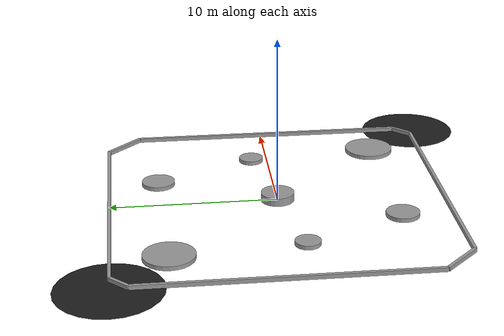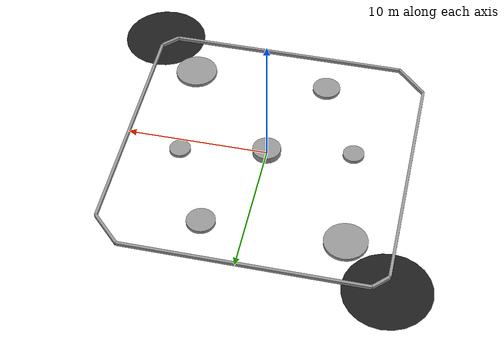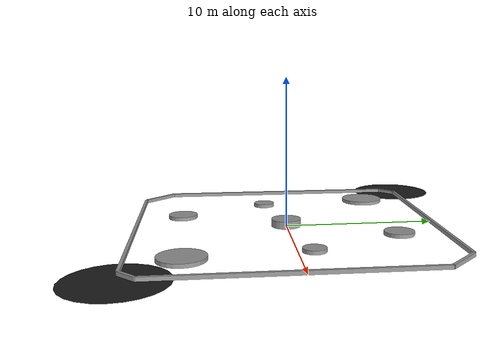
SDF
<?xml version='1.0'?>
<sdf version='1.4'>
  <model name='Wall'>
    <link name='Wall_1'>
      <collision name='Wall_1_Collision'>
        <geometry>
          <box>
            <size>17 0.2 0.25</size>
          </box>
        </geometry>
        <pose>0 0 0.125 0 -0 0</pose>
      </collision>
      <visual name='Wall_1_Visual'>
        <pose>0 0 0.125 0 -0 0</pose>
        <geometry>
          <box>
            <size>17 0.2 0.25</size>
          </box>
        </geometry>
        <material>
          <script>
            <uri>file://media/materials/scripts/gazebo.material</uri>
            <name>Gazebo/Grey</name>
          </script>
        </material>
      </visual>
      <velocity_decay>
        <linear>0</linear>
        <angular>0</angular>
      </velocity_decay>
      <pose>-10 0.5 0 0 0 -1.5708</pose>
    </link>

    <link name='Wall_2'>
      <collision name='Wall_2_Collision'>
        <geometry>
          <box>
            <size>17 0.2 0.25</size>
          </box>
        </geometry>
        <pose>0 0 0.125 0 -0 0</pose>
      </collision>
      <visual name='Wall_2_Visual'>
        <pose>0 0 0.125 0 -0 0</pose>
        <geometry>
          <box>
            <size>17 0.2 0.25</size>
          </box>
         </geometry>
        <material>
          <script>
            <uri>file://media/materials/scripts/gazebo.material</uri>
            <name>Gazebo/Grey</name>
          </script>
        </material>
      </visual>
      <velocity_decay>
        <linear>0</linear>
        <angular>0</angular>
      </velocity_decay>
      <pose>0.5 -10 0 0 0 0</pose>
    </link>

 <link name='Wall_3'>
      <collision name='Wall_3_Collision'>
        <geometry>
          <box>
            <size>17 0.2 0.25</size>
          </box>
        </geometry>
        <pose>0 0 0.125 0 -0 0</pose>
      </collision>
      <visual name='Wall_3_Visual'>
        <pose>0 0 0.125 0 -0 0</pose>
        <geometry>
          <box>
            <size>17 0.2 0.25</size>
          </box>
        </geometry>
        <material>
          <script>
            <uri>file://media/materials/scripts/gazebo.material</uri>
            <name>Gazebo/Grey</name>
          </script>
        </material>
      </visual>
      <velocity_decay>
        <linear>0</linear>
        <angular>0</angular>
      </velocity_decay>
      <pose>10 -0.5 0 0 0 -1.5708</pose>
    </link>

    <link name='Wall_4'>
      <collision name='Wall_4_Collision'>
        <geometry>
          <box>
            <size>17 0.2 0.25</size>
          </box>
        </geometry>
        <pose>0 0 0.125 0 -0 0</pose>
      </collision>
      <visual name='Wall_4_Visual'>
        <pose>0 0 0.125 0 -0 0</pose>
        <geometry>
          <box>
            <size>17 0.2 0.25</size>
          </box>
        </geometry>
        <material>
          <script>
            <uri>file://media/materials/scripts/gazebo.material</uri>
            <name>Gazebo/Grey</name>
          </script>
        </material>
      </visual>
      <velocity_decay>
        <linear>0</linear>
        <angular>0</angular>
      </velocity_decay>
      <pose>-0.5 10 0 0 0 0</pose>
    </link>

    <link name='Wall_5'>
      <collision name='Wall_5_Collision'>
        <geometry>
          <box>
            <size> 2.828427 0.2 0.25</size>
          </box>
        </geometry>
        <pose>0 0 0.125 0 -0 0</pose>
      </collision>
      <visual name='Wall_5_Visual'>
        <pose>0 0 0.125 0 -0 0</pose>
        <geometry>
          <box>
            <size>2.828427 0.2 0.25</size>
          </box>
        </geometry>
        <material>
          <script>
            <uri>file://media/materials/scripts/gazebo.material</uri>
            <name>Gazebo/Grey</name>
          </script>
        </material>
      </visual>
      <velocity_decay>
        <linear>0</linear>
        <angular>0</angular>
      </velocity_decay>
      <pose>9 9 0 0 0 -0.78539</pose>
    </link>

    <link name='Wall_6'>
      <collision name='Wall_6_Collision'>
        <geometry>
          <box>
            <size> 2.828427 0.2 0.25</size>
          </box>
        </geometry>
        <pose>0 0 0.125 0 -0 0</pose>
      </collision>
      <visual name='Wall_6_Visual'>
        <pose>0 0 0.125 0 -0 0</pose>
        <geometry>
          <box>
            <size>2.828427 0.2 0.25</size>
          </box>
        </geometry>
        <material>
          <script>
            <uri>file://media/materials/scripts/gazebo.material</uri>
            <name>Gazebo/Grey</name>
          </script>
        </material>
      </visual>
      <velocity_decay>
        <linear>0</linear>
        <angular>0</angular>
      </velocity_decay>
      <pose>-9 -9 0 0 0 -0.78539</pose>
    </link>
<link name='Wall_6'>
      <collision name='Wall_6_Collision'>
        <geometry>
          <box>
            <size> 2.828427 0.2 0.25</size>
          </box>
        </geometry>
        <pose>0 0 0.125 0 -0 0</pose>
      </collision>
      <visual name='Wall_6_Visual'>
        <pose>0 0 0.125 0 -0 0</pose>
        <geometry>
          <box>
            <size>2.828427 0.2 0.25</size>
          </box>
        </geometry>
        <material>
          <script>
            <uri>file://media/materials/scripts/gazebo.material</uri>
            <name>Gazebo/Grey</name>
          </script>
        </material>
      </visual>
      <velocity_decay>
        <linear>0</linear>
        <angular>0</angular>
      </velocity_decay>
      <pose>-9 -9 0 0 0 -0.78539</pose>
    </link>

    <link name='Wall_7'>
      <collision name='Wall_7_Collision'>
        <geometry>
          <box>
            <size> 1.414215 0.2 0.25</size>
          </box>
        </geometry>
        <pose>0 0 0.125 0 -0 0</pose>
      </collision>
      <visual name='Wall_7_Visual'>
        <pose>0 0 0.125 0 -0 0</pose>
        <geometry>
          <box>
            <size>1.414215 0.2 0.25</size>
          </box>
        </geometry>
        <material>
          <script>
            <uri>file://media/materials/scripts/gazebo.material</uri>
            <name>Gazebo/Grey</name>
          </script>
        </material>
      </visual>
      <velocity_decay>
        <linear>0</linear>
        <angular>0</angular>
      </velocity_decay>
      <pose>-9.5 9.5 0 0 0 0.78539</pose>
    </link>

    <link name='Wall_8'>
      <collision name='Wall_8_Collision'>
        <geometry>
          <box>
            <size> 1.414215 0.2 0.25</size>
          </box>
        </geometry>
        <pose>0 0 0.125 0 -0 0</pose>
      </collision>
      <visual name='Wall_7_Visual'>
        <pose>0 0 0.125 0 -0 0</pose>
        <geometry>
          <box>
            <size>1.414215 0.2 0.25</size>
          </box>
        </geometry>
        <material>
          <script>
            <uri>file://media/materials/scripts/gazebo.material</uri>
            <name>Gazebo/Grey</name>
          </script>
        </material>
      </visual>
      <velocity_decay>
        <linear>0</linear>
        <angular>0</angular>
      </velocity_decay>
      <pose> 9.5 -9.5 0 0 0 0.78539</pose>
    </link>

 <link name='Home_A'>
   <visual name='Home_A_Visual'>
        <pose>0 0 0.002 0 0 0</pose>
        <geometry>
         <cylinder>
            <radius> 3 </radius>
	    <length> 0.0001 </length>
          </cylinder>
        </geometry>
        <material>
          <script>
            <uri>file://media/materials/scripts/gazebo.material</uri>
	   <name>Gazebo/Black</name>
          </script>
        </material>
      </visual>
      <velocity_decay>
        <linear>0</linear>
        <angular>0</angular>
      </velocity_decay>
      <pose>-10 10 0 0 0 0</pose>
    </link>

    <link name='Home_B'>
      <visual name='Home_B_Visual'>
        <pose>0 0 0.002 0 0 0</pose>
        <geometry>
	  <cylinder>
            <radius> 3 </radius>
	    <length> 0.0001 </length>
          </cylinder>
        </geometry>
        <material>
          <script>
            <uri>file://media/materials/scripts/gazebo.material</uri>
	  <name>Gazebo/Black</name>
          </script>
        </material>
      </visual>
      <velocity_decay>
        <linear>0</linear>
        <angular>0</angular>
      </velocity_decay>
      <pose>10 -10 0 0 0 0</pose>
    </link>

    <link name='Obstacle_0'>
      <collision name='Obstacle_0_Collision'>
        <geometry>
          <cylinder>
            <radius> 1 </radius>
	    <length> .5 </length>
          </cylinder>
        </geometry>
        <pose>0 0 0.25 0 -0 0</pose>
      </collision>
      <visual name='Obstacle_0_Visual'>
        <pose>0 0 0.25 0 -0 0</pose>
        <geometry>
         <cylinder>
            <radius> 1 </radius>
	    <length> .5 </length>
          </cylinder>
	</geometry>
        <material>
          <script>
            <uri>file://media/materials/scripts/gazebo.material</uri>
            <name>Gazebo/Grey</name>
          </script>
        </material>
      </visual>
      <velocity_decay>
        <linear>0</linear>
        <angular>0</angular>
      </velocity_decay>
      <pose>0 0 0 0 0 0</pose>
    </link>

 <link name='Obstacle_1'>
      <collision name='Obstacle_1_Collision'>
        <geometry>
          <cylinder>
            <radius> 1.5 </radius>
	    <length> 0.25 </length>
          </cylinder>
        </geometry>
        <pose>0 0 0.125 0 -0 0</pose>
      </collision>
      <visual name='Obstacle_1_Visual'>
        <pose>0 0 0.125 0 -0 0</pose>
        <geometry>
         <cylinder>
            <radius> 1.5 </radius>
	    <length> 0.25 </length>
          </cylinder>
	</geometry>
        <material>
          <script>
            <uri>file://media/materials/scripts/gazebo.material</uri>
            <name>Gazebo/Grey</name>
          </script>
        </material>
      </visual>
      <velocity_decay>
        <linear>0</linear>
        <angular>0</angular>
      </velocity_decay>
      <pose> 6.75 -6.75 0 0 0 0</pose>
    </link>
   <link name='Obstacle_2'>
      <collision name='Obstacle_2_Collision'>
        <geometry>
          <cylinder>
            <radius> 1.5 </radius>
	    <length> 0.25 </length>
          </cylinder>
        </geometry>
        <pose>0 0 0.125 0 -0 0</pose>
      </collision>
      <visual name='Obstacle_2_Visual'>
        <pose>0 0 0.125 0 -0 0</pose>
        <geometry>
         <cylinder>
            <radius> 1.5 </radius>
	    <length> 0.25 </length>
          </cylinder>
	</geometry>
        <material>
          <script>
            <uri>file://media/materials/scripts/gazebo.material</uri>
            <name>Gazebo/Grey</name>
          </script>
        </material>
      </visual>
      <velocity_decay>
        <linear>0</linear>
        <angular>0</angular>
      </velocity_decay>
      <pose> -6.75 6.75 0 0 0 0</pose>
    </link>

    <link name='Obstacle_3'>
      <collision name='Obstacle_3_Collision'>
        <geometry>
          <cylinder>
            <radius> 1 </radius>
	    <length> 0.25 </length>
          </cylinder>
        </geometry>
        <pose>0 0 0.125 0 -0 0</pose>
      </collision>
      <visual name='Obstacle_3_Visual'>
        <pose>0 0 0.125 0 -0 0</pose>
        <geometry>
         <cylinder>
            <radius> 1 </radius>
	    <length> 0.25 </length>
          </cylinder>
	</geometry>
        <material>
          <script>
            <uri>file://media/materials/scripts/gazebo.material</uri>
            <name>Gazebo/Grey</name>
          </script>
        </material>
      </visual>
      <velocity_decay>
        <linear>0</linear>
        <angular>0</angular>
      </velocity_decay>
      <pose> 3 7 0 0 0 0</pose>
    </link>

 <link name='Obstacle_4'>
      <collision name='Obstacle_4_Collision'>
        <geometry>
          <cylinder>
            <radius> 1 </radius>
	    <length> 0.25 </length>
          </cylinder>
        </geometry>
        <pose>0 0 0.125 0 -0 0</pose>
      </collision>
      <visual name='Obstacle_4_Visual'>
        <pose>0 0 0.125 0 -0 0</pose>
        <geometry>
         <cylinder>
            <radius> 1 </radius>
	    <length> 0.25 </length>
          </cylinder>
	</geometry>
        <material>
          <script>
            <uri>file://media/materials/scripts/gazebo.material</uri>
            <name>Gazebo/Grey</name>
          </script>
        </material>
      </visual>
      <velocity_decay>
        <linear>0</linear>
        <angular>0</angular>
      </velocity_decay>
      <pose> -3 -7 0 0 0 0</pose>
    </link>

    <link name='Obstacle_5'>
      <collision name='Obstacle_5_Collision'>
        <geometry>
          <cylinder>
            <radius> .75 </radius>
	    <length> 0.25 </length>
          </cylinder>
        </geometry>
        <pose>0 0 0.125 0 -0 0</pose>
      </collision>
      <visual name='Obstacle_5_Visual'>
        <pose>0 0 0.125 0 -0 0</pose>
        <geometry>
         <cylinder>
            <radius> .75 </radius>
	    <length> 0.25 </length>
          </cylinder>
	</geometry>
        <material>
          <script>
            <uri>file://media/materials/scripts/gazebo.material</uri>
            <name>Gazebo/Grey</name>
          </script>
        </material>
      </visual>
      <velocity_decay>
        <linear>0</linear>
        <angular>0</angular>
      </velocity_decay>
      <pose> 6 1 0 0 0 0</pose>
    </link>

 <link name='Obstacle_6'>
      <collision name='Obstacle_6_Collision'>
        <geometry>
          <cylinder>
            <radius> .75 </radius>
	    <length> 0.25 </length>
          </cylinder>
        </geometry>
        <pose>0 0 0.125 0 -0 0</pose>
      </collision>
      <visual name='Obstacle_6_Visual'>
        <pose>0 0 0.125 0 -0 0</pose>
        <geometry>
         <cylinder>
            <radius> .75 </radius>
	    <length> 0.25 </length>
          </cylinder>
	</geometry>
        <material>
          <script>
            <uri>file://media/materials/scripts/gazebo.material</uri>
            <name>Gazebo/Grey</name>
          </script>
        </material>
      </visual>
      <velocity_decay>
        <linear>0</linear>
        <angular>0</angular>
      </velocity_decay>
      <pose> -6 -1 0 0 0 0</pose>
    </link>

    <static>1</static>
  </model>
</sdf>
